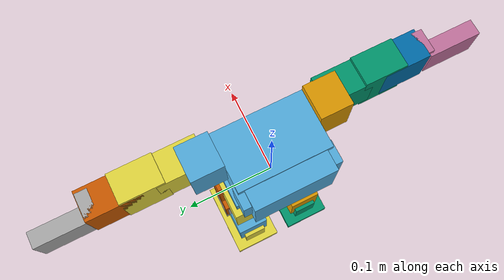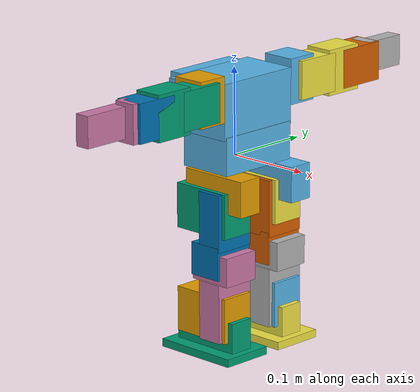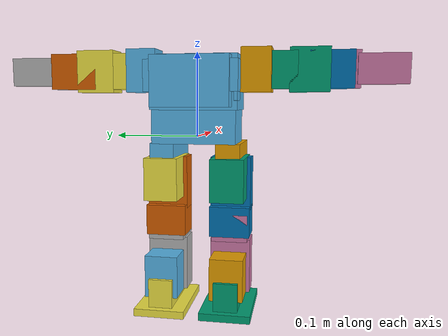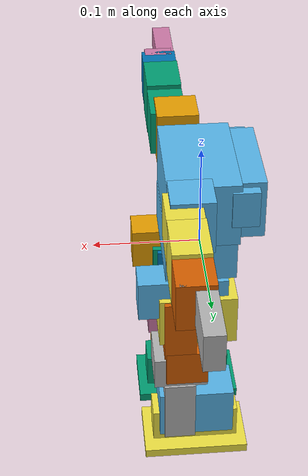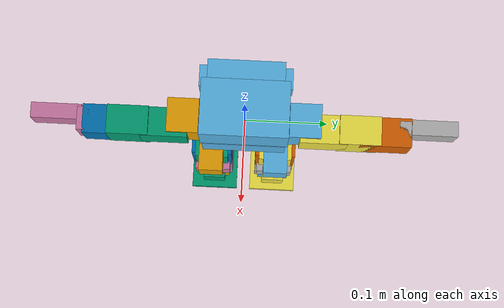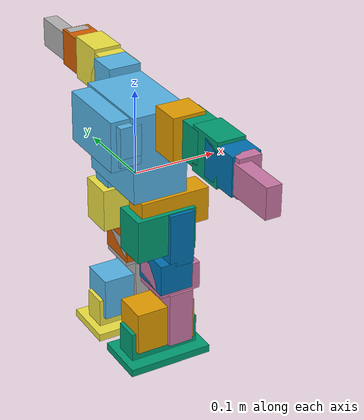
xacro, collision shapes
<?xml version="1.0"?>
<robot xmlns:xacro="http://www.ros.org/wiki/xacro" name="bioloid">

    <!-- Pi is now predefined -->
    <xacro:property name="cad_dir" value="file:///$(find bioloid_master)/assets/cad"/>
    <xacro:property name="hip_offset_xy" value="0.0065"/>
    <xacro:property name="hip_offset_yx" value="0.0015"/>
    <xacro:property name="hip_offset_rot" value="0.7416"/>
    <!-- Typically, STL/DAE model units are in mm, but RViz units are in m, hence models must be scaled down by 1000. -->
    <xacro:macro name="default_geometry" params="cad_file suffix:=_FCD-Conv_BDR-Col extension:=dae">
        <geometry>
            <mesh filename="${cad_dir}/${cad_file}${suffix}.${extension}" scale="0.001 0.001 0.001"/>
        </geometry>
    </xacro:macro>
    <xacro:macro name="z_rot">
        <axis xyz="0 0 1"/>
    </xacro:macro>

    <!-- Select one and only one of the following include files -->
    <!-- 1) Standard parts of Bioloid Comprehensive humanoid with 18 AX-12+ servos, which have been replaced in custom version -->
    <!--    When using this URDF, ensure a transform from odom to base_link is being published -->
    <!-- 2) Custom parts of modified Bioloid Comprehensive humanoid, with CM-5 replaced by PC and custom sensors -->
    <!--    When using this URDF, ensure a transform from odom to imu_link is being published -->
    <xacro:include filename="$(find bioloid_master)/urdf/bioloid_custom_parts.xacro"/>

    <!-- Import gazebo_ros_control plugin -->
    <xacro:include filename="$(find bioloid_master)/urdf/bioloid_gazebo.xacro"/>

    <xacro:macro name="shoulder_swing_joint" params="prefix reflect">
        <joint name="${prefix}_shoulder_swing_joint" type="revolute">
            <parent link="torso_link"/>
            <origin xyz="${reflect*(-0.032)} 0 0" rpy="${reflect*(-pi/2)} 0 ${reflect*(pi/2)}"/>
            <xacro:z_rot/>
            <child link="${prefix}_shoulder_swing_link"/>
            <limit lower="${-pi}" upper="${pi}" effort="10" velocity="1.0"/>
        </joint>
    </xacro:macro>
    <xacro:macro name="shoulder_lateral_joint" params="prefix reflect">
        <joint name="${prefix}_shoulder_lateral_joint" type="revolute">
            <parent link="${prefix}_shoulder_swing_link"/>
            <origin xyz="${reflect*(-0.014)} 0 ${reflect*0.044}" rpy="${-pi/2} ${pi/2} 0"/>
            <xacro:z_rot/>
            <child link="${prefix}_upper_arm_link"/>
            <limit lower="${-pi}" upper="${pi}" effort="10" velocity="1.0"/>
        </joint>
    </xacro:macro>
    <xacro:macro name="elbow_joint" params="prefix reflect">
        <joint name="${prefix}_elbow_joint" type="revolute">
            <parent link="${prefix}_upper_arm_link"/>
            <origin xyz="${reflect*-0.0675} 0 0" rpy="0 0 0"/>
            <xacro:z_rot/>
            <child link="${prefix}_lower_arm_link"/>
            <limit lower="${-1.77}" upper="${1.77}" effort="10" velocity="1.0"/>
        </joint>
    </xacro:macro>
    <xacro:macro name="hand_joint" params="prefix">
        <joint name="${prefix}_hand_joint" type="fixed">
            <parent link="${prefix}_lower_arm_link"/>
            <origin xyz="0 0 0" rpy="0 0 0"/>
            <child link="${prefix}_hand_link"/>
        </joint>
    </xacro:macro>
    <xacro:macro name="hip_twist_joint" params="prefix reflect rotatex rotatez">
        <joint name="${prefix}_hip_twist_joint" type="revolute">
            <parent link="torso_link"/>
            <origin xyz="${reflect*(-0.033)-reflect*(hip_offset_xy)} ${hip_offset_yx-0.016} -0.0655" rpy="${rotatex*pi} 0 ${rotatez*pi}"/>
            <xacro:z_rot/>
            <child link="${prefix}_hip_twist_link"/>
            <limit lower="${-pi/4}" upper="${pi/4}" effort="10" velocity="1.0"/>
        </joint>
    </xacro:macro>
    <xacro:macro name="hip_lateral_joint" params="prefix reflect">
        <joint name="${prefix}_hip_lateral_joint" type="revolute">
            <parent link="${prefix}_hip_twist_link"/>
            <origin xyz="0 ${-0.0153-hip_offset_yx*2} ${reflect*0.05}" rpy="${reflect*pi/2} 0 0"/>
            <xacro:z_rot/>
            <child link="${prefix}_hip_lateral_link"/>
            <limit lower="${-0.3}" upper="${1.0}" effort="10" velocity="1.0"/>
        </joint>
    </xacro:macro>
    <xacro:macro name="hip_swing_joint" params="prefix reflect rotatex">
        <joint name="${prefix}_hip_swing_joint" type="revolute">
            <parent link="${prefix}_hip_lateral_link"/>
            <origin xyz="0 0 ${reflect*(-0.032)}" rpy="${rotatex*pi} ${-pi/2} 0"/>
            <xacro:z_rot/>
            <child link="${prefix}_upper_leg_link"/>
            <limit lower="${-pi/2}" upper="${1.9}" effort="10" velocity="1.0"/>
        </joint>
    </xacro:macro>
    <xacro:macro name="knee_joint" params="prefix reflect">
        <joint name="${prefix}_knee_joint" type="revolute">
            <parent link="${prefix}_upper_leg_link"/>
            <origin xyz="${reflect*0.0145} ${reflect*0.075} 0" rpy="0 0 0"/>
            <xacro:z_rot/>
            <child link="${prefix}_lower_leg_link"/>
            <limit lower="${-pi}" upper="${0}" effort="10" velocity="1.0"/>
        </joint>
    </xacro:macro>
    <xacro:macro name="ankle_swing_joint" params="prefix reflect">
        <joint name="${prefix}_ankle_swing_joint" type="revolute">
            <parent link="${prefix}_lower_leg_link"/>
            <origin xyz="${reflect*-0.0145} ${reflect*0.071} 0" rpy="0 0 0"/>
            <xacro:z_rot/>
            <child link="${prefix}_ankle_swing_link"/>
            <limit lower="${-0.45}" upper="${pi/2}" effort="10" velocity="1.0"/>
        </joint>
    </xacro:macro>
    <xacro:macro name="ankle_lateral_joint" params="prefix reflect">
        <joint name="${prefix}_ankle_lateral_joint" type="revolute">
            <parent link="${prefix}_ankle_swing_link"/>
            <origin xyz="${reflect*0.032} 0 0" rpy="0 ${pi/2} 0"/>
            <xacro:z_rot/>
            <child link="${prefix}_ankle_lateral_link"/>
            <limit lower="${-0.7}" upper="${0.7}" effort="10" velocity="1.0"/>
        </joint>
    </xacro:macro>
    <xacro:macro name="foot_joint" params="prefix">
        <joint name="${prefix}_foot_joint" type="fixed">
            <parent link="${prefix}_ankle_lateral_link"/>
            <origin xyz="0 0 0" rpy="0 0 0"/>
            <child link="${prefix}_foot_link"/>
        </joint>
    </xacro:macro>

    <!-- Base -->
    <joint name="base_to_torso_joint" type="fixed">
        <parent link="base_link"/>
        <origin xyz="0 0 0" rpy="0 0 ${pi/2}"/>
        <child link="torso_link"/>
    </joint>
    <link name="base_link">
    </link>

   <!-- Head -->

   <joint name="head_pan_joint" type="revolute">
    <origin rpy="0 0 -1.570795" xyz="0 0 0.03"/>
    <parent link="torso_link"/>
    <child link="head_pan_link"/>
    <axis xyz="0 0 1"/>
    <limit effort="30" velocity="1.0" lower="-1.45" upper="1.45" />
   </joint>
   <link name="head_pan_link">
    <origin xyz="0 0 0"/>
   </link>

   <joint name="head_tilt_joint" type="revolute">
    <origin rpy="0 0 0" xyz="0 0 0.03227"/>
    <parent link="head_pan_link"/>
    <child link="head_tilt_link"/>
    <axis xyz="0 1 0"/>
    <limit effort="30" velocity="1.0" lower="-0.3" upper="0.3" />
   </joint>
   <link name="head_tilt_link">
    <origin xyz="0 0 0"/>
  </link>

   <joint name="head_ee_joint" type="fixed">
    <origin rpy="0 0 0" xyz="0 0 0"/>
    <parent link="head_tilt_link"/>
    <child link="head_ee_link"/>
   </joint>
   <link name="head_ee_link">
      <visual>
      <geometry>
        <mesh filename="package://bioloid_master/assets/cad/BIO-Head.dae" scale="0.001 0.001 0.001"/>
      </geometry>
      <origin rpy="1.5708 0 0.0" xyz="0 0 0"/>
    </visual>
    <origin xyz="0 0 0"/>

  </link>

    <!-- Torso to right shoulder -->
    <xacro:shoulder_swing_joint prefix="right" reflect="1"/>
    <link name="right_shoulder_swing_link">
        <visual>
            <xacro:default_geometry cad_file="FP04-F1"/>
            <origin xyz="-0.014 0 0.044" rpy="0 ${pi} ${-pi/2}"/>
        </visual>
        <collision name="right_shoulder_collision">
            <origin xyz="-0.006 0 0.0375"/>
            <geometry>
                <box size="0.039 0.052 0.036"/>
            </geometry>
        </collision>
        <inertial>
            <origin xyz="0 0 0"/>
            <mass value="1.0"/>
            <inertia  ixx="0.001" ixy="0.0"  ixz="0.0"  iyy="0.001"  iyz="0.0"  izz="0.001"/>
        </inertial>
    </link>

    <!-- Torso to left shoulder -->
    <xacro:shoulder_swing_joint prefix="left" reflect="-1"/>
    <link name="left_shoulder_swing_link">
        <visual>
            <xacro:default_geometry cad_file="FP04-F1"/>
            <origin xyz="0.014 0 -0.044" rpy="0 0 ${pi/2}"/>
        </visual>
        <collision name="left_shoulder_collision">
            <origin xyz="0.006 0 -0.0375"/>
            <geometry>
                <box size="0.039 0.052 0.036"/>
            </geometry>
        </collision>
        <inertial>
            <origin xyz="0 0 0"/>
            <mass value="1.0"/>
            <inertia  ixx="0.001" ixy="0.0"  ixz="0.0"  iyy="0.001"  iyz="0.0"  izz="0.001"/>
        </inertial>
    </link>

    <!-- Right shoulder to upper arm -->
    <xacro:shoulder_lateral_joint prefix="right" reflect="1"/>
    <link name="right_upper_arm_link">
        <visual>
            <xacro:default_geometry cad_file="AX-12"/>
            <origin xyz="0 0 0" rpy="${pi} 0 ${pi/2}"/>
        </visual>
        <visual>
            <xacro:default_geometry cad_file="BPF-BU"/>
            <origin xyz="0 0 0.0185" rpy="${pi/2} 0 0"/>
        </visual>
        <visual>
            <xacro:default_geometry cad_file="BPF-WA"/>
            <origin xyz="0 0 0.019" rpy="${pi/2} 0 0"/>
        </visual>
        <visual>
            <xacro:default_geometry cad_file="FP04-F3"/>
            <origin xyz="-0.0415 0 0" rpy="0 0 ${-pi/2}"/>
        </visual>
        <visual>
            <xacro:default_geometry cad_file="FP04-F2"/>
            <origin xyz="-0.0675 0 0" rpy="0 ${pi/2} 0"/>
        </visual>
        <collision name="right_upper arm_collision_proximal">
            <origin xyz="-0.0148 0 0"/>
            <geometry>
                <box size="0.054 0.033 0.044"/>
            </geometry>
        </collision>
        <collision name="right_upper arm_collision_distal">
            <origin xyz="-0.0555 0 0"/>
            <geometry>
                <box size="0.047 0.033 0.052"/>
            </geometry>
        </collision>
        <inertial>
            <origin xyz="0 0 0"/>
            <mass value="1.0"/>
            <inertia  ixx="0.001" ixy="0.0"  ixz="0.0"  iyy="0.001"  iyz="0.0"  izz="0.001"/>
        </inertial>
    </link>

    <!-- Left shoulder to upper arm -->
    <xacro:shoulder_lateral_joint prefix="left" reflect="-1"/>
    <link name="left_upper_arm_link">
        <visual>
            <xacro:default_geometry cad_file="AX-12"/>
            <origin xyz="0 0 0" rpy="0 0 ${pi/2}"/>
        </visual>
        <visual>
            <xacro:default_geometry cad_file="BPF-BU"/>
            <origin xyz="0 0 -0.0185" rpy="${-pi/2} 0 0"/>
        </visual>
        <visual>
            <xacro:default_geometry cad_file="BPF-WA"/>
            <origin xyz="0 0 -0.019" rpy="${-pi/2} 0 0"/>
        </visual>
        <visual>
            <xacro:default_geometry cad_file="FP04-F3"/>
            <origin xyz="0.0415 0 0" rpy="0 0 ${pi/2}"/>
        </visual>
        <visual>
            <xacro:default_geometry cad_file="FP04-F2"/>
            <origin xyz="0.0675 0 0" rpy="0 ${-pi/2} 0"/>
        </visual>
        <collision name="left_upper arm_collision_proximal">
            <origin xyz="0.0148 0 0"/>
            <geometry>
                <box size="0.054 0.033 0.044"/>
            </geometry>
        </collision>
        <collision name="left_upper arm_collision_distal">
            <origin xyz="0.0555 0 0"/>
            <geometry>
                <box size="0.047 0.033 0.052"/>
            </geometry>
        </collision>
        <inertial>
            <origin xyz="0 0 0"/>
            <mass value="1.0"/>
            <inertia  ixx="0.001" ixy="0.0"  ixz="0.0"  iyy="0.001"  iyz="0.0"  izz="0.001"/>
        </inertial>
    </link>

    <!-- Right upper arm to lower arm -->
    <xacro:elbow_joint prefix="right" reflect="1"/>
    <link name="right_lower_arm_link">
        <!-- Motor 5 -->
        <visual>
            <xacro:default_geometry cad_file="AX-12"/>
            <origin xyz="0 0 0" rpy="${pi} 0 ${pi/2}"/>
        </visual>
        <visual>
            <xacro:default_geometry cad_file="BPF-BU"/>
            <origin xyz="0 0 0.0185" rpy="${pi/2} 0 0"/>
        </visual>
        <visual>
            <xacro:default_geometry cad_file="BPF-WA"/>
            <origin xyz="0 0 0.019" rpy="${pi/2} 0 0"/>
        </visual>
        <visual>
            <xacro:default_geometry cad_file="FP04-F3"/>
            <origin xyz="-0.0415 0 0" rpy="0 0 ${-pi/2}"/>
        </visual>
        <collision name="right_lower_arm_collision">
            <origin xyz="-0.0135 0 0"/>
            <geometry>
                <box size="0.051 0.033 0.044"/>
            </geometry>
        </collision>
        <inertial>
            <origin xyz="0 0 0"/>
            <mass value="1.0"/>
            <inertia  ixx="0.001" ixy="0.0"  ixz="0.0"  iyy="0.001"  iyz="0.0"  izz="0.001"/>
        </inertial>
    </link>

    <!-- Left upper arm to lower arm -->
    <xacro:elbow_joint prefix="left" reflect="-1"/>
    <link name="left_lower_arm_link">
        <!-- Motor 6 -->
        <visual>
            <xacro:default_geometry cad_file="AX-12"/>
            <origin xyz="0 0 0" rpy="0 0 ${pi/2}"/>
        </visual>
        <visual>
            <xacro:default_geometry cad_file="BPF-BU"/>
            <origin xyz="0 0 -0.0185" rpy="${-pi/2} 0 0"/>
        </visual>
        <visual>
            <xacro:default_geometry cad_file="BPF-WA"/>
            <origin xyz="0 0 -0.019" rpy="${-pi/2} 0 0"/>
        </visual>
        <visual>
            <xacro:default_geometry cad_file="FP04-F3"/>
            <origin xyz="0.0415 0 0" rpy="0 0 ${pi/2}"/>
        </visual>
        <collision name="left_lower_arm_collision">
            <origin xyz="0.017 0 0"/>
            <geometry>
                <box size="0.058 0.033 0.044"/>
            </geometry>
        </collision>
        <inertial>
            <origin xyz="0 0 0"/>
            <mass value="1.0"/>
            <inertia  ixx="0.001" ixy="0.0"  ixz="0.0"  iyy="0.001"  iyz="0.0"  izz="0.001"/>
        </inertial>
    </link>

    <!-- Right lower arm to hand -->
    <xacro:hand_joint prefix="right"/>
    <link name="right_hand_link">
        <visual>
            <xacro:default_geometry cad_file="FP04-F11"/>
            <origin xyz="-0.0415 0 0" rpy="${-pi} ${pi/2} 0"/>
        </visual>
        <collision name="right_palm_collision">
            <origin xyz="-0.039 0 0"/>
            <geometry>
                <box size="0.0131 0.0265 0.044"/>
            </geometry>
        </collision>
        <collision name="right_fingers_collision">
            <origin xyz="-0.0701 -0.0077 0"/>
            <geometry>
                <box size="0.0575 0.0175 0.035"/>
            </geometry>
        </collision>
        <inertial>
            <origin xyz="0 0 0"/>
            <mass value="1.0"/>
            <inertia  ixx="0.001" ixy="0.0"  ixz="0.0"  iyy="0.001"  iyz="0.0"  izz="0.001"/>
        </inertial>
    </link>

    <!-- Left lower arm to hand -->
    <xacro:hand_joint prefix="left"/>
    <link name="left_hand_link">
        <visual>
            <xacro:default_geometry cad_file="FP04-F11"/>
            <origin xyz="0.0415 0 0" rpy="0 ${pi/2} 0"/>
        </visual>
        <collision name="left_palm_collision">
            <origin xyz="0.039 0 0"/>
            <geometry>
                <box size="0.0131 0.0265 0.044"/>
            </geometry>
        </collision>
        <collision name="left_fingers_collision">
            <origin xyz="0.0701 0.0077 0"/>
            <geometry>
                <box size="0.0575 0.0175 0.035"/>
            </geometry>
        </collision>
        <inertial>
            <origin xyz="0 0 0"/>
            <mass value="1.0"/>
            <inertia  ixx="0.001" ixy="0.0"  ixz="0.0"  iyy="0.001"  iyz="0.0"  izz="0.001"/>
        </inertial>
    </link>

    <!-- Torso to right hip twist -->
    <xacro:hip_twist_joint prefix="right" reflect="1" rotatex="1" rotatez="0"/>
    <link name="right_hip_twist_link">
        <visual>
            <xacro:default_geometry cad_file="FP04-F5"/>
            <origin xyz="0 -${hip_offset_xy*2} 0.05" rpy="${pi} 0 0"/>
        </visual>
        <collision name="right_hip_twist_collision">
            <origin xyz="0 0.0008 0.041"/>
            <geometry>
                <box size="0.029 0.083 0.0405"/>
            </geometry>
        </collision>
        <inertial>
            <origin xyz="0 0 0"/>
            <mass value="1.0"/>
            <inertia  ixx="0.001" ixy="0.0"  ixz="0.0"  iyy="0.001"  iyz="0.0"  izz="0.001"/>
        </inertial>
    </link>

    <!-- Torso to left hip twist -->
    <xacro:hip_twist_joint prefix="left" reflect="-1" rotatex="0" rotatez="1"/>
    <link name="left_hip_twist_link">
        <visual>
            <xacro:default_geometry cad_file="FP04-F5"/>
            <origin xyz="0 -${hip_offset_xy*2} -0.05" rpy="0 0 ${pi}"/>
        </visual>
        <collision name="left_hip_twist_collision">
            <origin xyz="0 0.0008 -0.041"/>
            <geometry>
                <box size="0.029 0.083 0.0405"/>
            </geometry>
        </collision>
        <inertial>
            <origin xyz="0 0 0"/>
            <mass value="1.0"/>
            <inertia  ixx="0.001" ixy="0.0"  ixz="0.0"  iyy="0.001"  iyz="0.0"  izz="0.001"/>
        </inertial>
    </link>

    <!-- Right hip twist to hip lateral -->
    <xacro:hip_lateral_joint prefix="right" reflect="1"/>
    <link name="right_hip_lateral_link">
        <!-- Motor 9 -->
        <visual>
            <xacro:default_geometry cad_file="AX-12"/>
            <origin xyz="0 0 0" rpy="0 0 ${pi}"/>
        </visual>
        <visual>
            <xacro:default_geometry cad_file="FP04-F6"/>
            <origin xyz="-0.019 0.0145 0.016" rpy="0 ${-pi/2} ${-pi/2}"/>
        </visual>
        <visual>
            <xacro:default_geometry cad_file="FP04-F6"/>
            <origin xyz="0.019 0.0145 0.016" rpy="0 ${-pi/2} ${pi/2}"/>
        </visual>
        <!-- Motor 11 -->
        <visual>
            <xacro:default_geometry cad_file="AX-12"/>
            <origin xyz="0 0 -0.032" rpy="${pi} ${-pi/2} 0"/>
        </visual>
        <visual>
            <xacro:default_geometry cad_file="BPF-BU"/>
            <origin xyz="0 0 -0.05" rpy="${-pi/2} 0 0"/>
        </visual>
        <visual>
            <xacro:default_geometry cad_file="FP04-F7"/>
            <origin xyz="0 0.0145 -0.051" rpy="${pi/2} 0 ${-pi/2}"/>
        </visual>
        <collision name="right_hip_lateral_collision">
            <origin xyz="0 0.0135 -0.0153"/>
            <geometry>
                <box size="0.04 0.051 0.0721"/>
            </geometry>
        </collision>
        <inertial>
            <origin xyz="0 0 0"/>
            <mass value="1.0"/>
            <inertia  ixx="0.001" ixy="0.0"  ixz="0.0"  iyy="0.001"  iyz="0.0"  izz="0.001"/>
        </inertial>
    </link>

    <!-- Left hip twist to hip lateral -->
    <xacro:hip_lateral_joint prefix="left" reflect="-1"/>
    <link name="left_hip_lateral_link">
        <!-- Motor 10 -->
        <visual>
            <xacro:default_geometry cad_file="AX-12"/>
            <origin xyz="0 0 0" rpy="${pi} 0 0"/>
        </visual>
        <visual>
            <xacro:default_geometry cad_file="FP04-F6"/>
            <origin xyz="-0.019 0.0145 -0.016" rpy="0 ${pi/2} ${-pi/2}"/>
        </visual>
        <visual>
            <xacro:default_geometry cad_file="FP04-F6"/>
            <origin xyz="0.019 0.0145 -0.016" rpy="0 ${pi/2} ${pi/2}"/>
        </visual>
        <!-- Motor 12 -->
        <visual>
            <xacro:default_geometry cad_file="AX-12"/>
            <origin xyz="0 0 0.032" rpy="${pi} ${-pi/2} 0"/>
        </visual>
        <visual>
            <xacro:default_geometry cad_file="BPF-BU"/>
            <origin xyz="0 0 0.05" rpy="${pi/2} 0 0"/>
        </visual>
        <visual>
            <xacro:default_geometry cad_file="FP04-F7"/>
            <origin xyz="0 0.0145 0.051" rpy="${-pi/2} 0 ${-pi/2}"/>
        </visual>
        <collision name="left_hip_lateral_collision">
            <origin xyz="0 0.0135 0.0153"/>
            <geometry>
                <box size="0.04 0.051 0.0721"/>
            </geometry>
        </collision>
        <inertial>
            <origin xyz="0 0 0"/>
            <mass value="1.0"/>
            <inertia  ixx="0.001" ixy="0.0"  ixz="0.0"  iyy="0.001"  iyz="0.0"  izz="0.001"/>
        </inertial>
    </link>

    <!-- Right hip lateral to upper leg -->
    <xacro:hip_swing_joint prefix="right" reflect="1" rotatex="0"/>
    <link name="right_upper_leg_link">
        <visual>
            <xacro:default_geometry cad_file="FP04-F4"/>
            <origin xyz="0 0 0" rpy="${-pi/2} ${pi/2} 0"/>
        </visual>
        <visual>
            <xacro:default_geometry cad_file="FP04-F1"/>
            <origin xyz="0.0145 0.075 0" rpy="${pi/2} ${-pi/2} 0"/>
        </visual>
        <collision name="right_upper_leg_proximal_collision">
            <origin xyz="0 0.0214 0"/>
            <geometry>
                <box size="0.03 0.065 0.049"/>
            </geometry>
        </collision>
        <collision name="right_upper_leg_distal_collision">
            <origin xyz="0.0065 0.0675 0"/>
            <geometry>
                <box size="0.04 0.0371 0.049"/>
            </geometry>
        </collision>
        <inertial>
            <origin xyz="0 0 0"/>
            <mass value="1.0"/>
            <inertia  ixx="0.001" ixy="0.0"  ixz="0.0"  iyy="0.001"  iyz="0.0"  izz="0.001"/>
        </inertial>
    </link>

    <!-- Left hip lateral to upper leg -->
    <xacro:hip_swing_joint prefix="left" reflect="-1" rotatex="1"/>
    <link name="left_upper_leg_link">
        <visual>
            <xacro:default_geometry cad_file="FP04-F4"/>
            <origin xyz="0 0 0" rpy="${pi/2} ${pi/2} 0"/>
        </visual>
        <visual>
            <xacro:default_geometry cad_file="FP04-F1"/>
            <origin xyz="-0.0145 -0.075 0" rpy="${-pi/2} ${-pi/2} 0"/>
        </visual>
        <collision name="left_upper_leg_proximal_collision">
            <origin xyz="0 -0.0214 0"/>
            <geometry>
                <box size="0.03 0.065 0.049"/>
            </geometry>
        </collision>
        <collision name="left_upper_leg_distal_collision">
            <origin xyz="-0.0065 -0.0675 0"/>
            <geometry>
                <box size="0.04 0.0371 0.049"/>
            </geometry>
        </collision>
        <inertial>
            <origin xyz="0 0 0"/>
            <mass value="1.0"/>
            <inertia  ixx="0.001" ixy="0.0"  ixz="0.0"  iyy="0.001"  iyz="0.0"  izz="0.001"/>
        </inertial>
    </link>

    <!-- Right upper leg to lower leg -->
    <xacro:knee_joint prefix="right" reflect="1"/>
    <link name="right_lower_leg_link">
        <!-- Motor 13 -->
        <visual>
            <xacro:default_geometry cad_file="AX-12"/>
            <origin xyz="0 0 0" rpy="0 ${pi} ${-pi/2}"/>
        </visual>
        <visual>
            <xacro:default_geometry cad_file="FP04-F3"/>
            <origin xyz="-0.0145 0.019 0" rpy="0 0 ${pi}"/>
        </visual>
        <visual>
            <xacro:default_geometry cad_file="FP04-F4"/>
            <origin xyz="-0.0145 0.071 0" rpy="${pi/2} ${-pi/2} 0"/>
        </visual>
        <collision name="right_lower_leg_proximal_collision">
            <origin xyz="-0.0135 0 0"/>
            <geometry>
                <box size="0.051 0.033 0.044"/>
            </geometry>
        </collision>
        <collision name="right_lower_leg_distal_collision">
            <origin xyz="-0.0145 0.0492 0"/>
            <geometry>
                <box size="0.03 0.067 0.049"/>
            </geometry>
        </collision>
        <inertial>
            <origin xyz="0 0 0"/>
            <mass value="1.0"/>
            <inertia  ixx="0.001" ixy="0.0"  ixz="0.0"  iyy="0.001"  iyz="0.0"  izz="0.001"/>
        </inertial>
    </link>

    <!-- Left upper leg to lower leg -->
    <xacro:knee_joint prefix="left" reflect="-1"/>
    <link name="left_lower_leg_link">
        <!-- Motor 14 -->
        <visual>
            <xacro:default_geometry cad_file="AX-12"/>
            <origin xyz="0 0 0" rpy="0 0 ${pi/2}"/>
        </visual>
        <visual>
            <xacro:default_geometry cad_file="FP04-F3"/>
            <origin xyz="0.0145 -0.019 0" rpy="0 0 0"/>
        </visual>
        <visual>
            <xacro:default_geometry cad_file="FP04-F4"/>
            <origin xyz="0.0145 -0.071 0" rpy="${-pi/2} ${-pi/2} 0"/>
        </visual>
        <collision name="left_lower_leg_proximal_collision">
            <origin xyz="0.0135 0 0"/>
            <geometry>
                <box size="0.051 0.033 0.044"/>
            </geometry>
        </collision>
        <collision name="left_lower_leg_distal_collision">
            <origin xyz="0.0145 -0.0492 0"/>
            <geometry>
                <box size="0.03 0.067 0.049"/>
            </geometry>
        </collision>
        <inertial>
            <origin xyz="0 0 0"/>
            <mass value="1.0"/>
            <inertia  ixx="0.001" ixy="0.0"  ixz="0.0"  iyy="0.001"  iyz="0.0"  izz="0.001"/>
        </inertial>
    </link>

    <!-- Right lower leg to ankle swing -->
    <xacro:ankle_swing_joint prefix="right" reflect="1"/>
    <link name="right_ankle_swing_link">
        <!-- Motor 15 -->
        <visual>
            <xacro:default_geometry cad_file="AX-12"/>
            <origin xyz="0 0 0" rpy="0 ${pi} 0"/>
        </visual>
        <visual>
            <xacro:default_geometry cad_file="FP04-F7"/>
            <origin xyz="-0.019 -0.0145 0" rpy="${pi} 0 ${pi/2}"/>
        </visual>
        <!-- Motor 17 -->
        <visual>
            <xacro:default_geometry cad_file="AX-12"/>
            <origin xyz="0.032 0 0" rpy="0 ${pi/2} 0"/>
        </visual>
        <visual>
            <xacro:default_geometry cad_file="FP04-F6"/>
            <origin xyz="0.048 -0.0145 0.019" rpy="${-pi/2} 0 0"/>
        </visual>
        <visual>
            <xacro:default_geometry cad_file="FP04-F6"/>
            <origin xyz="0.048 -0.0145 -0.019" rpy="${pi/2} 0 0"/>
        </visual>
        <collision name="right_ankle_swing_collision">
            <origin xyz="0.0167 -0.0135 0"/>
            <geometry>
                <box size="0.0721 0.051 0.04"/>
            </geometry>
        </collision>
        <inertial>
            <origin xyz="0 0 0"/>
            <mass value="1.0"/>
            <inertia  ixx="0.001" ixy="0.0"  ixz="0.0"  iyy="0.001"  iyz="0.0"  izz="0.001"/>
        </inertial>
    </link>

    <!-- Left lower leg to ankle swing -->
    <xacro:ankle_swing_joint prefix="left" reflect="-1"/>
    <link name="left_ankle_swing_link">
        <!-- Motor 16 -->
        <visual>
            <xacro:default_geometry cad_file="AX-12"/>
            <origin xyz="0 0 0" rpy="0 0 ${pi}"/>
        </visual>
        <visual>
            <xacro:default_geometry cad_file="FP04-F7"/>
            <origin xyz="0.019 0.0145 0" rpy="${pi} 0 ${-pi/2}"/>
        </visual>
        <!-- Motor 18 -->
        <visual>
            <xacro:default_geometry cad_file="AX-12"/>
            <origin xyz="-0.032 0 0" rpy="${pi} ${pi/2} 0"/>
        </visual>
        <visual>
            <xacro:default_geometry cad_file="FP04-F6"/>
            <origin xyz="-0.048 0.0145 -0.019" rpy="${pi/2} 0 ${pi}"/>
        </visual>
        <visual>
            <xacro:default_geometry cad_file="FP04-F6"/>
            <origin xyz="-0.048 0.0145 0.019" rpy="${-pi/2} 0 ${pi}"/>
        </visual>
        <collision name="left_ankle_swing_collision">
            <origin xyz="-0.0167 0.0135 0"/>
            <geometry>
                <box size="0.0721 0.051 0.04"/>
            </geometry>
        </collision>
        <inertial>
            <origin xyz="0 0 0"/>
            <mass value="1.0"/>
            <inertia  ixx="0.001" ixy="0.0"  ixz="0.0"  iyy="0.001"  iyz="0.0"  izz="0.001"/>
        </inertial>
    </link>

    <!-- Right ankle swing to ankle lateral -->
    <xacro:ankle_lateral_joint prefix="right" reflect="1"/>
    <link name="right_ankle_lateral_link">
        <visual>
            <xacro:default_geometry cad_file="BPF-BU"/>
            <origin xyz="0 0 -0.05" rpy="${-pi/2} 0 0"/>
        </visual>
        <visual>
            <xacro:default_geometry cad_file="FP04-F5"/>
            <origin xyz="0 0 -0.0153" rpy="${-pi/2} ${pi} 0"/>
        </visual>
        <collision name="right_ankle_lateral_collision">
            <origin xyz="0 0.009 -0.016"/>
            <geometry>
                <box size="0.029 0.0405 0.083"/>
            </geometry>
        </collision>
        <inertial>
            <origin xyz="0 0 0"/>
            <mass value="1.0"/>
            <inertia  ixx="0.001" ixy="0.0"  ixz="0.0"  iyy="0.001"  iyz="0.0"  izz="0.001"/>
        </inertial>
    </link>

    <!-- Left ankle swing to ankle lateral -->
    <xacro:ankle_lateral_joint prefix="left" reflect="-1"/>
    <link name="left_ankle_lateral_link">
        <visual>
            <xacro:default_geometry cad_file="BPF-BU"/>
            <origin xyz="0 0 0.05" rpy="${pi/2} 0 0"/>
        </visual>
        <visual>
            <xacro:default_geometry cad_file="FP04-F5"/>
            <origin xyz="0 0 0.0153" rpy="${pi/2} ${pi} 0"/>
        </visual>
        <collision name="left_ankle_lateral_collision">
            <origin xyz="0 -0.009 0.016"/>
            <geometry>
                <box size="0.029 0.0405 0.083"/>
            </geometry>
        </collision>
        <inertial>
            <origin xyz="0 0 0"/>
            <mass value="1.0"/>
            <inertia  ixx="0.001" ixy="0.0"  ixz="0.0"  iyy="0.001"  iyz="0.0"  izz="0.001"/>
        </inertial>
    </link>

    <!-- Right ankle lateral to foot -->
    <xacro:foot_joint prefix="right"/>

    <!-- Left ankle lateral to foot -->
    <xacro:foot_joint prefix="left"/>

</robot>

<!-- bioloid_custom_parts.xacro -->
<!-- Custom Bioloid parts -->
<robot xmlns:xacro="http://www.ros.org/wiki/xacro">

    <xacro:property name="hip_offset_xy" value="0.0065"/>
    <xacro:property name="hip_offset_yx" value="0.0065"/>

    <!-- IMU -->
    <joint name="imu_to_base_joint" type="fixed">
        <parent link="imu_link"/>
        <origin xyz="0.01 0 0.0788" rpy="0 0 0"/>
        <child link="base_link"/>
    </joint>
    <link name="imu_link">
        <visual>
            <geometry>
                <box size="0.04 0.02 0.005"/>
            </geometry>
            <material name="green">
                <color rgba="0.0 1.0 0.0 1.0"/>
            </material>
        </visual>
    </link>

    <!-- Camera -->

    <!-- Torso -->
    <link name="torso_link">
        <visual>
            <xacro:default_geometry cad_file="BPF-CHEST-F"/>
            <origin rpy="${pi/2} 0 0"/>
        </visual>
        <visual>
            <xacro:default_geometry cad_file="BPF-CHEST-B"/>
            <origin rpy="${pi/2} 0 0"/>
        </visual>
        <visual>
            <xacro:default_geometry cad_file="Backpack-DX"/>
            <origin xyz="0 0.019 -0.0145" rpy="0 0 ${pi/2}"/>
        </visual>
        <visual>
            <xacro:default_geometry cad_file="Battery-Turnigy-2200mAh"/>
            <origin xyz="0 0.032 -0.008" rpy="0 ${pi/2} ${pi/2}"/>
        </visual>
        <!-- Motor 1 -->
        <visual>
            <xacro:default_geometry cad_file="AX-12"/>
            <origin xyz="-0.032 0 0" rpy="${pi/2} 0 ${-pi/2}"/>
        </visual>
        <visual>
            <xacro:default_geometry cad_file="FP04-F3"/>
            <origin xyz="-0.032 0.019 -0.0145" rpy="${pi} ${-pi/2} 0"/>
        </visual>
        <!-- Motor 2 -->
        <visual>
            <xacro:default_geometry cad_file="AX-12"/>
            <origin xyz="0.032 0 0" rpy="${pi/2} 0 ${pi/2}"/>
        </visual>
        <visual>
            <xacro:default_geometry cad_file="FP04-F3"/>
            <origin xyz="0.032 0.019 -0.0145" rpy="${pi} ${-pi/2} 0"/>
        </visual>
        <visual>
            <xacro:default_geometry cad_file="FP04-F8"/>
            <origin xyz="0 0.0255 -0.0465" rpy="${-pi/2} 0 ${pi/2}"/>
        </visual>
        <visual>
            <xacro:default_geometry cad_file="FP04-F8"/>
            <origin xyz="0 0.0255 -0.0843" rpy="${pi/2} 0 ${pi/2}"/>
        </visual>
        <!-- Motor 7 -->
        <visual>

            <xacro:default_geometry cad_file="AX-12"/>
            <origin xyz="${-0.033-hip_offset_yx} ${-0.016+hip_offset_xy} -0.0655" rpy="0 ${pi} ${pi/2}"/>
        </visual>
        <!-- Motor 8 -->
        <visual>
            <xacro:default_geometry cad_file="AX-12"/>
            <origin xyz="${+0.033+hip_offset_yx} ${-0.016+hip_offset_xy} -0.0655" rpy="0 ${pi} ${-pi/2}"/>
        </visual>
        <collision name="torso_collision_top">
            <origin xyz="0 0.0075 -0.015"/>
            <geometry>
                <box size="0.103 0.066 0.0635"/>
            </geometry>
        </collision>
        <collision name="Backpack-DX_collision">
            <origin xyz="0 0.041 -0.0145"/>
            <geometry>
                <box size="0.09 0.0441 0.058"/>
            </geometry>
        </collision>
        <collision name="Battery-Turnigy-2200mAh_collision">
            <origin xyz="0 0.04425 -0.008"/>
            <geometry>
                <box size="0.108 0.0246 0.036"/>
            </geometry>
        </collision>
        <collision name="Battery-Turnigy-2200mAh_collision_lead">
            <origin xyz="-0.0515 0.04425 -0.031"/>
            <geometry>
                <box size="0.0041 0.0246 0.01"/>
            </geometry>
        </collision>
        <collision name="torso_collision_bottom">
            <origin xyz="0 0.00625 -0.0648"/>
            <geometry>
                <box size="0.099 0.065 0.043"/>
            </geometry>
        </collision>
        <inertial>
            <origin xyz="0 0 0"/>
            <mass value="1.0"/>
            <inertia  ixx="0.001" ixy="0.0"  ixz="0.0"  iyy="0.001"  iyz="0.0"  izz="0.001"/>
        </inertial>
    </link>

    <!-- Right foot -->
    <link name="right_foot_link">
        <visual>
            <xacro:default_geometry cad_file="FP04-F12"/>
            <origin xyz="0 0.0235 -0.016" rpy="0 ${-pi/2} 0"/>
        </visual>
        <!-- FSR 0 -->
        <visual>
            <xacro:default_geometry cad_file="34-47021_FSR_400_Short_Tail"/>
            <origin xyz="0.022 0.0319 -0.039" rpy="${pi} 0 0"/>
        </visual>
        <!-- FSR 1 -->
        <visual>
            <xacro:default_geometry cad_file="34-47021_FSR_400_Short_Tail"/>
            <origin xyz="-0.022 0.0319 -0.039" rpy="${pi} 0 0"/>
        </visual>
        <!-- FSR 2 -->
        <visual>
            <xacro:default_geometry cad_file="34-47021_FSR_400_Short_Tail"/>
            <origin xyz="-0.022 0.0319 0.007" rpy="${pi} ${pi} 0"/>
        </visual>
        <collision name="right_foot_collision">
            <origin xyz="0 0.0277 -0.016"/>
            <geometry>
                <box size="0.061 0.009 0.101"/>
            </geometry>
        </collision>
        <inertial>
            <origin xyz="0 0 0"/>
            <mass value="1.0"/>
            <inertia  ixx="0.001" ixy="0.0"  ixz="0.0"  iyy="0.001"  iyz="0.0"  izz="0.001"/>
        </inertial>
    </link>

    <!-- Left foot -->
    <link name="left_foot_link">
        <visual>
            <xacro:default_geometry cad_file="FP04-F12"/>
            <origin xyz="0 -0.0235 0.016" rpy="${pi} ${pi/2} 0"/>
        </visual>
        <!-- FSR 3 -->
        <visual>
            <xacro:default_geometry cad_file="34-47021_FSR_400_Short_Tail"/>
            <origin xyz="-0.022 -0.0319 0.039" rpy="0 0 0"/>
        </visual>
        <!-- FSR 4 -->
        <visual>
            <xacro:default_geometry cad_file="34-47021_FSR_400_Short_Tail"/>
            <origin xyz="0.022 -0.0319 0.039" rpy="0 0 0"/>
        </visual>
        <!-- FSR 5 -->
        <visual>
            <xacro:default_geometry cad_file="34-47021_FSR_400_Short_Tail"/>
            <origin xyz="0.022 -0.0319 -0.007" rpy="0 ${pi} 0"/>
        </visual>
        <collision name="left_foot_collision">
            <origin xyz="0 -0.0277 0.016"/>
            <geometry>
                <box size="0.061 0.009 0.101"/>
            </geometry>
        </collision>
        <inertial>
            <origin xyz="0 0 0"/>
            <mass value="1.0"/>
            <inertia  ixx="0.001" ixy="0.0"  ixz="0.0"  iyy="0.001"  iyz="0.0"  izz="0.001"/>
        </inertial>
    </link>

</robot>
